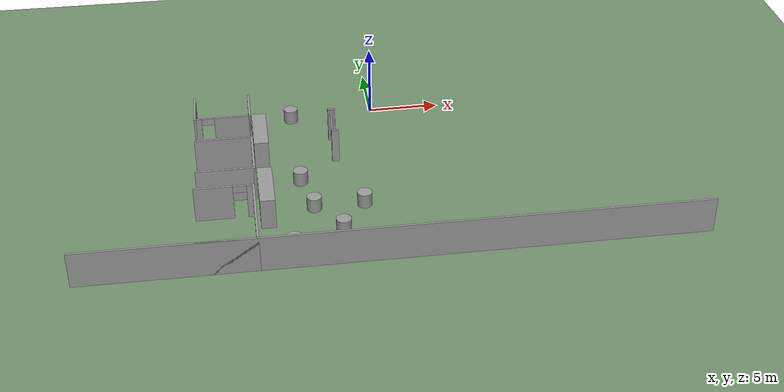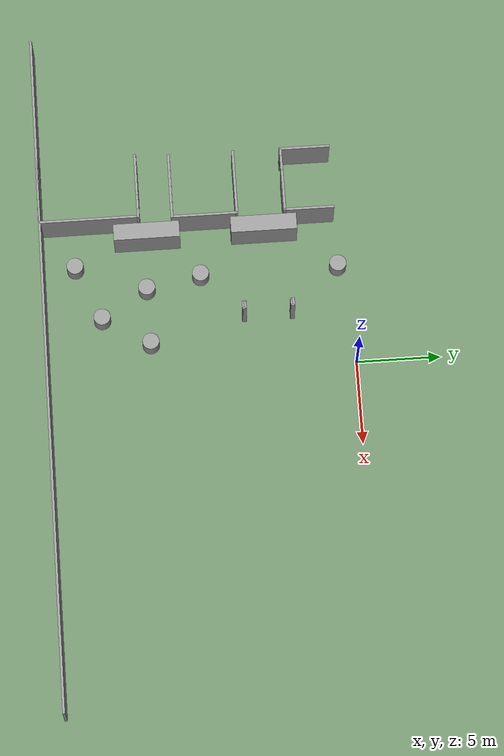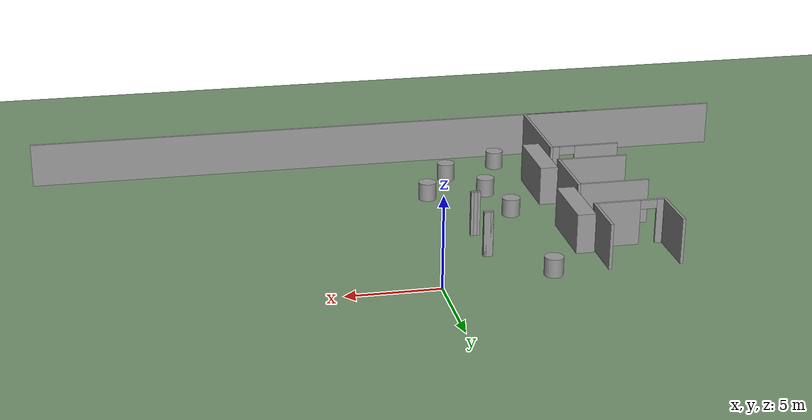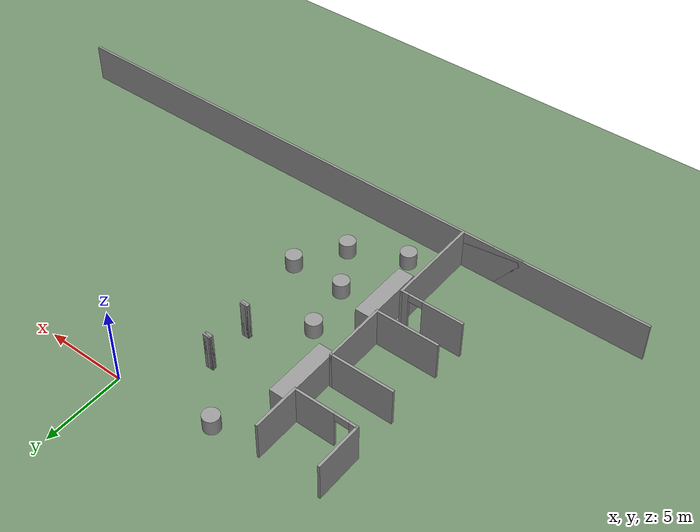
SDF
<sdf version="1.7">
 <world name="default">
  <model name="ground_plane">
   <static>1</static>
   <link name="link">
    <collision name="collision">
     <geometry><plane><normal>0 0 1</normal><size>600 600</size></plane></geometry>
     <surface>
      <contact><collide_bitmask>65535</collide_bitmask></contact>
      <friction><ode><mu>100</mu><mu2>50</mu2></ode></friction>
     </surface>
    </collision>
    <visual name="visual">
     <cast_shadows>0</cast_shadows>
     <geometry><plane><normal>0 0 1</normal><size>100 100</size></plane></geometry>
     <material><ambient>0.45 0.57 0.43 1</ambient><diffuse>0.45 0.57 0.43 1</diffuse></material>
    </visual>
   </link>
  </model>
  <model name="unit_box_clone_0">
   <pose>-8.33783 -11.9113 1.08892 0 -0.000118 -1.56902</pose>
   <link name="link">
    <inertial>
     <mass>1</mass>
     <inertia>
      <ixx>0.166667</ixx>
      <ixy>0</ixy>
      <ixz>0</ixz>
      <iyy>0.166667</iyy>
      <iyz>0</iyz>
      <izz>0.166667</izz>
     </inertia>
    </inertial>
    <collision name="collision"><geometry><box><size>3.92499 1 2.1783</size></box></geometry></collision>
    <visual name="visual">
     <geometry><box><size>3.92499 1 2.1783</size></box></geometry>
     <material>
      <script><name>Gazebo/Grey</name><uri>file://media/materials/scripts/gazebo.material</uri></script>
     </material>
    </visual>
   </link>
  </model>
  <model name="unit_box_clone_1">
   <pose>-8.36946 -4.94384 1.08892 0 0.000118 -1.57207</pose>
   <link name="link">
    <inertial>
     <mass>1</mass>
     <inertia>
      <ixx>0.166667</ixx>
      <ixy>0</ixy>
      <ixz>0</ixz>
      <iyy>0.166667</iyy>
      <iyz>0</iyz>
      <izz>0.166667</izz>
     </inertia>
    </inertial>
    <collision name="collision"><geometry><box><size>3.92499 1 2.1783</size></box></geometry></collision>
    <visual name="visual">
     <geometry><box><size>3.92499 1 2.1783</size></box></geometry>
     <material>
      <script><name>Gazebo/Grey</name><uri>file://media/materials/scripts/gazebo.material</uri></script>
     </material>
    </visual>
   </link>
  </model>
  <model name="unit_cylinder_4">
   <pose>-5.88047 -8.86762 0.499996 -3e-06 1e-06 0</pose>
   <link name="link">
    <inertial>
     <mass>1</mass>
     <inertia><ixx>0.145833</ixx><ixy>0</ixy><ixz>0</ixz><iyy>0.145833</iyy><iyz>0</iyz><izz>0.125</izz></inertia>
    </inertial>
    <collision name="collision">
     <geometry><cylinder><radius>0.5</radius><length>1</length></cylinder></geometry>
    </collision>
    <visual name="visual">
     <geometry><cylinder><radius>0.5</radius><length>1</length></cylinder></geometry>
     <material>
      <script><name>Gazebo/Grey</name><uri>file://media/materials/scripts/gazebo.material</uri></script>
     </material>
    </visual>
   </link>
  </model>
  <model name="unit_cylinder_5">
   <pose>-5.96407 -0.674477 0.499996 -3e-06 1e-06 0</pose>
   <link name="link">
    <inertial>
     <mass>1</mass>
     <inertia><ixx>0.145833</ixx><ixy>0</ixy><ixz>0</ixz><iyy>0.145833</iyy><iyz>0</iyz><izz>0.125</izz></inertia>
    </inertial>
    <collision name="collision">
     <geometry><cylinder><radius>0.5</radius><length>1</length></cylinder></geometry>
    </collision>
    <visual name="visual">
     <geometry><cylinder><radius>0.5</radius><length>1</length></cylinder></geometry>
     <material>
      <script><name>Gazebo/Grey</name><uri>file://media/materials/scripts/gazebo.material</uri></script>
     </material>
    </visual>
   </link>
  </model>
  <model name="unit_cylinder_6">
   <pose>-5.21652 -12.1055 0.499997 3e-06 -2e-06 0</pose>
   <link name="link">
    <inertial>
     <mass>1</mass>
     <inertia><ixx>0.145833</ixx><ixy>0</ixy><ixz>0</ixz><iyy>0.145833</iyy><iyz>0</iyz><izz>0.125</izz></inertia>
    </inertial>
    <collision name="collision">
     <geometry><cylinder><radius>0.5</radius><length>1</length></cylinder></geometry>
    </collision>
    <visual name="visual">
     <geometry><cylinder><radius>0.5</radius><length>1</length></cylinder></geometry>
     <material>
      <script><name>Gazebo/Grey</name><uri>file://media/materials/scripts/gazebo.material</uri></script>
     </material>
    </visual>
   </link>
  </model>
  <model name="unit_cylinder_7">
   <pose>-1.82971 -12.0558 0.499996 -3e-06 1e-06 0</pose>
   <link name="link">
    <inertial>
     <mass>1</mass>
     <inertia><ixx>0.145833</ixx><ixy>0</ixy><ixz>0</ixz><iyy>0.145833</iyy><iyz>0</iyz><izz>0.125</izz></inertia>
    </inertial>
    <collision name="collision">
     <geometry><cylinder><radius>0.5</radius><length>1</length></cylinder></geometry>
    </collision>
    <visual name="visual">
     <geometry><cylinder><radius>0.5</radius><length>1</length></cylinder></geometry>
     <material>
      <script><name>Gazebo/Grey</name><uri>file://media/materials/scripts/gazebo.material</uri></script>
     </material>
    </visual>
   </link>
  </model>
  <model name="unit_cylinder_8">
   <pose>-3.52298 -14.8483 0.499999 0 -0 0</pose>
   <link name="link">
    <inertial>
     <mass>1</mass>
     <inertia><ixx>0.145833</ixx><ixy>0</ixy><ixz>0</ixz><iyy>0.145833</iyy><iyz>0</iyz><izz>0.125</izz></inertia>
    </inertial>
    <collision name="collision">
     <geometry><cylinder><radius>0.5</radius><length>1</length></cylinder></geometry>
    </collision>
    <visual name="visual">
     <geometry><cylinder><radius>0.5</radius><length>1</length></cylinder></geometry>
     <material>
      <script><name>Gazebo/Grey</name><uri>file://media/materials/scripts/gazebo.material</uri></script>
     </material>
    </visual>
   </link>
  </model>
  <model name="unit_cylinder_10">
   <pose>-6.8017 -16.2883 0.499999 0 -0 0</pose>
   <link name="link">
    <inertial>
     <mass>1</mass>
     <inertia><ixx>0.145833</ixx><ixy>0</ixy><ixz>0</ixz><iyy>0.145833</iyy><iyz>0</iyz><izz>0.125</izz></inertia>
    </inertial>
    <collision name="collision">
     <geometry><cylinder><radius>0.5</radius><length>1</length></cylinder></geometry>
    </collision>
    <visual name="visual">
     <geometry><cylinder><radius>0.5</radius><length>1</length></cylinder></geometry>
     <material>
      <script><name>Gazebo/Grey</name><uri>file://media/materials/scripts/gazebo.material</uri></script>
     </material>
    </visual>
   </link>
  </model>
  <model name="myhal_V3_2">
   <link name="Wall_352">
    <pose>-0.05 -20.325 0 0 -0 0</pose>
    <visual name="Wall_352_Visual">
     <pose>0 0 1.25 0 -0 0</pose>
     <geometry><box><size>41 0.15 2.5</size></box></geometry>
     <material>
      <script><uri>file://media/materials/scripts/gazebo.material</uri><name>Gazebo/Grey</name></script>
      <ambient>1 1 1 1</ambient>
      <shader type="pixel"/>
     </material>
     <meta><layer>0</layer></meta>
    </visual>
    <collision name="Wall_352_Collision">
     <pose>0 0 1.25 0 -0 0</pose>
     <geometry><box><size>41 0.15 2.5</size></box></geometry>
     <surface>
      <friction>
       <ode><mu>1</mu><mu2>1</mu2><fdir1>0 0 0</fdir1><slip1>0</slip1><slip2>0</slip2></ode>
       <torsional>
        <coefficient>1</coefficient>
        <patch_radius>0</patch_radius>
        <surface_radius>0</surface_radius>
        <use_patch_radius>1</use_patch_radius>
        <ode><slip>0</slip></ode>
       </torsional>
      </friction>
      <bounce><restitution_coefficient>0</restitution_coefficient><threshold>1e+06</threshold></bounce>
      <contact>
       <collide_without_contact>0</collide_without_contact>
       <collide_without_contact_bitmask>1</collide_without_contact_bitmask>
       <collide_bitmask>1</collide_bitmask>
       <ode>
        <soft_cfm>0</soft_cfm>
        <soft_erp>0.2</soft_erp>
        <kp>1e+13</kp>
        <kd>1</kd>
        <max_vel>0.01</max_vel>
        <min_depth>0</min_depth>
       </ode>
       <bullet>
        <split_impulse>1</split_impulse>
        <split_impulse_penetration_threshold>-0.01</split_impulse_penetration_threshold>
        <soft_cfm>0</soft_cfm>
        <soft_erp>0.2</soft_erp>
        <kp>1e+13</kp>
        <kd>1</kd>
       </bullet>
      </contact>
     </surface>
    </collision>
   </link>
   <link name="Wall_428">
    <pose>-10.85 -20.325 0 0 -0 0</pose>
    <visual name="Wall_428_Visual">
     <pose>0 0 1.25 0 -0 0</pose>
     <geometry><box><size>4 0.15 2.5</size></box></geometry>
     <material>
      <script><uri>file://media/materials/scripts/gazebo.material</uri><name>Gazebo/Grey</name></script>
      <ambient>1 1 1 1</ambient>
      <shader type="pixel"/>
     </material>
     <meta><layer>0</layer></meta>
    </visual>
    <collision name="Wall_428_Collision">
     <pose>0 0 1.25 0 -0 0</pose>
     <geometry><box><size>4 0.15 2.5</size></box></geometry>
     <surface>
      <friction>
       <ode><mu>1</mu><mu2>1</mu2><fdir1>0 0 0</fdir1><slip1>0</slip1><slip2>0</slip2></ode>
       <torsional>
        <coefficient>1</coefficient>
        <patch_radius>0</patch_radius>
        <surface_radius>0</surface_radius>
        <use_patch_radius>1</use_patch_radius>
        <ode><slip>0</slip></ode>
       </torsional>
      </friction>
      <bounce><restitution_coefficient>0</restitution_coefficient><threshold>1e+06</threshold></bounce>
      <contact>
       <collide_without_contact>0</collide_without_contact>
       <collide_without_contact_bitmask>1</collide_without_contact_bitmask>
       <collide_bitmask>1</collide_bitmask>
       <ode>
        <soft_cfm>0</soft_cfm>
        <soft_erp>0.2</soft_erp>
        <kp>1e+13</kp>
        <kd>1</kd>
        <max_vel>0.01</max_vel>
        <min_depth>0</min_depth>
       </ode>
       <bullet>
        <split_impulse>1</split_impulse>
        <split_impulse_penetration_threshold>-0.01</split_impulse_penetration_threshold>
        <soft_cfm>0</soft_cfm>
        <soft_erp>0.2</soft_erp>
        <kp>1e+13</kp>
        <kd>1</kd>
       </bullet>
      </contact>
     </surface>
    </collision>
   </link>
   <link name="Wall_429">
    <pose>-8.925 -17.4 0 0 -0 1.5708</pose>
    <visual name="Wall_429_Visual">
     <pose>0 0 1.25 0 -0 0</pose>
     <geometry><box><size>6 0.15 2.5</size></box></geometry>
     <material>
      <script><uri>file://media/materials/scripts/gazebo.material</uri><name>Gazebo/Grey</name></script>
      <ambient>1 1 1 1</ambient>
      <shader type="pixel"/>
     </material>
     <meta><layer>0</layer></meta>
    </visual>
    <collision name="Wall_429_Collision">
     <pose>0 0 1.25 0 -0 0</pose>
     <geometry><box><size>6 0.15 2.5</size></box></geometry>
     <surface>
      <friction>
       <ode><mu>1</mu><mu2>1</mu2><fdir1>0 0 0</fdir1><slip1>0</slip1><slip2>0</slip2></ode>
       <torsional>
        <coefficient>1</coefficient>
        <patch_radius>0</patch_radius>
        <surface_radius>0</surface_radius>
        <use_patch_radius>1</use_patch_radius>
        <ode><slip>0</slip></ode>
       </torsional>
      </friction>
      <bounce><restitution_coefficient>0</restitution_coefficient><threshold>1e+06</threshold></bounce>
      <contact>
       <collide_without_contact>0</collide_without_contact>
       <collide_without_contact_bitmask>1</collide_without_contact_bitmask>
       <collide_bitmask>1</collide_bitmask>
       <ode>
        <soft_cfm>0</soft_cfm>
        <soft_erp>0.2</soft_erp>
        <kp>1e+13</kp>
        <kd>1</kd>
        <max_vel>0.01</max_vel>
        <min_depth>0</min_depth>
       </ode>
       <bullet>
        <split_impulse>1</split_impulse>
        <split_impulse_penetration_threshold>-0.01</split_impulse_penetration_threshold>
        <soft_cfm>0</soft_cfm>
        <soft_erp>0.2</soft_erp>
        <kp>1e+13</kp>
        <kd>1</kd>
       </bullet>
      </contact>
     </surface>
    </collision>
   </link>
   <link name="Wall_430">
    <pose>-10.85 -14.475 0 0 -0 3.14159</pose>
    <visual name="Wall_430_Visual_0">
     <pose>-1.73412 0 1.25 0 -0 0</pose>
     <geometry><box><size>0.531767 0.15 2.5</size></box></geometry>
     <material>
      <script><uri>file://media/materials/scripts/gazebo.material</uri><name>Gazebo/Grey</name></script>
      <ambient>1 1 1 1</ambient>
      <shader type="pixel"/>
     </material>
     <meta><layer>0</layer></meta>
    </visual>
    <visual name="Wall_430_Visual_1">
     <pose>0.715883 0 1.25 0 -0 0</pose>
     <geometry><box><size>2.56823 0.15 2.5</size></box></geometry>
     <material>
      <script><uri>file://media/materials/scripts/gazebo.material</uri><name>Gazebo/Grey</name></script>
      <ambient>1 1 1 1</ambient>
      <shader type="pixel"/>
     </material>
     <meta><layer>0</layer></meta>
    </visual>
    <visual name="Wall_430_Visual_2">
     <pose>-1.01823 0 2.25 0 -0 0</pose>
     <geometry><box><size>0.9 0.15 0.5</size></box></geometry>
     <material>
      <script><uri>file://media/materials/scripts/gazebo.material</uri><name>Gazebo/Grey</name></script>
      <ambient>1 1 1 1</ambient>
      <shader type="pixel"/>
     </material>
     <meta><layer>0</layer></meta>
    </visual>
    <collision name="Wall_430_Collision_2">
     <pose>-1.01823 0 2.25 0 -0 0</pose>
     <geometry><box><size>0.9 0.15 0.5</size></box></geometry>
     <surface>
      <friction>
       <ode><mu>1</mu><mu2>1</mu2><fdir1>0 0 0</fdir1><slip1>0</slip1><slip2>0</slip2></ode>
       <torsional>
        <coefficient>1</coefficient>
        <patch_radius>0</patch_radius>
        <surface_radius>0</surface_radius>
        <use_patch_radius>1</use_patch_radius>
        <ode><slip>0</slip></ode>
       </torsional>
      </friction>
      <bounce><restitution_coefficient>0</restitution_coefficient><threshold>1e+06</threshold></bounce>
      <contact>
       <collide_without_contact>0</collide_without_contact>
       <collide_without_contact_bitmask>1</collide_without_contact_bitmask>
       <collide_bitmask>1</collide_bitmask>
       <ode>
        <soft_cfm>0</soft_cfm>
        <soft_erp>0.2</soft_erp>
        <kp>1e+13</kp>
        <kd>1</kd>
        <max_vel>0.01</max_vel>
        <min_depth>0</min_depth>
       </ode>
       <bullet>
        <split_impulse>1</split_impulse>
        <split_impulse_penetration_threshold>-0.01</split_impulse_penetration_threshold>
        <soft_cfm>0</soft_cfm>
        <soft_erp>0.2</soft_erp>
        <kp>1e+13</kp>
        <kd>1</kd>
       </bullet>
      </contact>
     </surface>
    </collision>
    <collision name="Wall_430_Collision_1">
     <pose>0.715883 0 1.25 0 -0 0</pose>
     <geometry><box><size>2.56823 0.15 2.5</size></box></geometry>
     <surface>
      <friction>
       <ode><mu>1</mu><mu2>1</mu2><fdir1>0 0 0</fdir1><slip1>0</slip1><slip2>0</slip2></ode>
       <torsional>
        <coefficient>1</coefficient>
        <patch_radius>0</patch_radius>
        <surface_radius>0</surface_radius>
        <use_patch_radius>1</use_patch_radius>
        <ode><slip>0</slip></ode>
       </torsional>
      </friction>
      <bounce><restitution_coefficient>0</restitution_coefficient><threshold>1e+06</threshold></bounce>
      <contact>
       <collide_without_contact>0</collide_without_contact>
       <collide_without_contact_bitmask>1</collide_without_contact_bitmask>
       <collide_bitmask>1</collide_bitmask>
       <ode>
        <soft_cfm>0</soft_cfm>
        <soft_erp>0.2</soft_erp>
        <kp>1e+13</kp>
        <kd>1</kd>
        <max_vel>0.01</max_vel>
        <min_depth>0</min_depth>
       </ode>
       <bullet>
        <split_impulse>1</split_impulse>
        <split_impulse_penetration_threshold>-0.01</split_impulse_penetration_threshold>
        <soft_cfm>0</soft_cfm>
        <soft_erp>0.2</soft_erp>
        <kp>1e+13</kp>
        <kd>1</kd>
       </bullet>
      </contact>
     </surface>
    </collision>
    <collision name="Wall_430_Collision_0">
     <pose>-1.73412 0 1.25 0 -0 0</pose>
     <geometry><box><size>0.531767 0.15 2.5</size></box></geometry>
     <surface>
      <friction>
       <ode><mu>1</mu><mu2>1</mu2><fdir1>0 0 0</fdir1><slip1>0</slip1><slip2>0</slip2></ode>
       <torsional>
        <coefficient>1</coefficient>
        <patch_radius>0</patch_radius>
        <surface_radius>0</surface_radius>
        <use_patch_radius>1</use_patch_radius>
        <ode><slip>0</slip></ode>
       </torsional>
      </friction>
      <bounce><restitution_coefficient>0</restitution_coefficient><threshold>1e+06</threshold></bounce>
      <contact>
       <collide_without_contact>0</collide_without_contact>
       <collide_without_contact_bitmask>1</collide_without_contact_bitmask>
       <collide_bitmask>1</collide_bitmask>
       <ode>
        <soft_cfm>0</soft_cfm>
        <soft_erp>0.2</soft_erp>
        <kp>1e+13</kp>
        <kd>1</kd>
        <max_vel>0.01</max_vel>
        <min_depth>0</min_depth>
       </ode>
       <bullet>
        <split_impulse>1</split_impulse>
        <split_impulse_penetration_threshold>-0.01</split_impulse_penetration_threshold>
        <soft_cfm>0</soft_cfm>
        <soft_erp>0.2</soft_erp>
        <kp>1e+13</kp>
        <kd>1</kd>
       </bullet>
      </contact>
     </surface>
    </collision>
   </link>
   <link name="Wall_443">
    <pose>-12.625 -4.35 0 0 0 -1.5708</pose>
    <visual name="Wall_443_Visual">
     <pose>0 0 1.25 0 -0 0</pose>
     <geometry><box><size>3 0.15 2.5</size></box></geometry>
     <material>
      <script><uri>file://media/materials/scripts/gazebo.material</uri><name>Gazebo/Grey</name></script>
      <ambient>1 1 1 1</ambient>
      <shader type="pixel"/>
     </material>
     <meta><layer>0</layer></meta>
    </visual>
    <collision name="Wall_443_Collision">
     <pose>0 0 1.25 0 -0 0</pose>
     <geometry><box><size>3 0.15 2.5</size></box></geometry>
     <surface>
      <friction>
       <ode><mu>1</mu><mu2>1</mu2><fdir1>0 0 0</fdir1><slip1>0</slip1><slip2>0</slip2></ode>
       <torsional>
        <coefficient>1</coefficient>
        <patch_radius>0</patch_radius>
        <surface_radius>0</surface_radius>
        <use_patch_radius>1</use_patch_radius>
        <ode><slip>0</slip></ode>
       </torsional>
      </friction>
      <bounce><restitution_coefficient>0</restitution_coefficient><threshold>1e+06</threshold></bounce>
      <contact>
       <collide_without_contact>0</collide_without_contact>
       <collide_without_contact_bitmask>1</collide_without_contact_bitmask>
       <collide_bitmask>1</collide_bitmask>
       <ode>
        <soft_cfm>0</soft_cfm>
        <soft_erp>0.2</soft_erp>
        <kp>1e+13</kp>
        <kd>1</kd>
        <max_vel>0.01</max_vel>
        <min_depth>0</min_depth>
       </ode>
       <bullet>
        <split_impulse>1</split_impulse>
        <split_impulse_penetration_threshold>-0.01</split_impulse_penetration_threshold>
        <soft_cfm>0</soft_cfm>
        <soft_erp>0.2</soft_erp>
        <kp>1e+13</kp>
        <kd>1</kd>
       </bullet>
      </contact>
     </surface>
    </collision>
   </link>
   <link name="Wall_444">
    <pose>-10.7 -5.775 0 0 -0 0</pose>
    <visual name="Wall_444_Visual_0">
     <pose>-1.73399 0 1.25 0 -0 0</pose>
     <geometry><box><size>0.532014 0.15 2.5</size></box></geometry>
     <material>
      <script><uri>file://media/materials/scripts/gazebo.material</uri><name>Gazebo/Grey</name></script>
      <ambient>1 1 1 1</ambient>
      <shader type="pixel"/>
     </material>
     <meta><layer>0</layer></meta>
    </visual>
    <visual name="Wall_444_Visual_1">
     <pose>0.716007 0 1.25 0 -0 0</pose>
     <geometry><box><size>2.56799 0.15 2.5</size></box></geometry>
     <material>
      <script><uri>file://media/materials/scripts/gazebo.material</uri><name>Gazebo/Grey</name></script>
      <ambient>1 1 1 1</ambient>
      <shader type="pixel"/>
     </material>
     <meta><layer>0</layer></meta>
    </visual>
    <visual name="Wall_444_Visual_2">
     <pose>-1.01799 0 2.25 0 -0 0</pose>
     <geometry><box><size>0.9 0.15 0.5</size></box></geometry>
     <material>
      <script><uri>file://media/materials/scripts/gazebo.material</uri><name>Gazebo/Grey</name></script>
      <ambient>1 1 1 1</ambient>
      <shader type="pixel"/>
     </material>
     <meta><layer>0</layer></meta>
    </visual>
    <collision name="Wall_444_Collision_0">
     <pose>-1.73399 0 1.25 0 -0 0</pose>
     <geometry><box><size>0.532014 0.15 2.5</size></box></geometry>
     <surface>
      <friction>
       <ode><mu>1</mu><mu2>1</mu2><fdir1>0 0 0</fdir1><slip1>0</slip1><slip2>0</slip2></ode>
       <torsional>
        <coefficient>1</coefficient>
        <patch_radius>0</patch_radius>
        <surface_radius>0</surface_radius>
        <use_patch_radius>1</use_patch_radius>
        <ode><slip>0</slip></ode>
       </torsional>
      </friction>
      <bounce><restitution_coefficient>0</restitution_coefficient><threshold>1e+06</threshold></bounce>
      <contact>
       <collide_without_contact>0</collide_without_contact>
       <collide_without_contact_bitmask>1</collide_without_contact_bitmask>
       <collide_bitmask>1</collide_bitmask>
       <ode>
        <soft_cfm>0</soft_cfm>
        <soft_erp>0.2</soft_erp>
        <kp>1e+13</kp>
        <kd>1</kd>
        <max_vel>0.01</max_vel>
        <min_depth>0</min_depth>
       </ode>
       <bullet>
        <split_impulse>1</split_impulse>
        <split_impulse_penetration_threshold>-0.01</split_impulse_penetration_threshold>
        <soft_cfm>0</soft_cfm>
        <soft_erp>0.2</soft_erp>
        <kp>1e+13</kp>
        <kd>1</kd>
       </bullet>
      </contact>
     </surface>
    </collision>
    <collision name="Wall_444_Collision_1">
     <pose>0.716007 0 1.25 0 -0 0</pose>
     <geometry><box><size>2.56799 0.15 2.5</size></box></geometry>
     <surface>
      <friction>
       <ode><mu>1</mu><mu2>1</mu2><fdir1>0 0 0</fdir1><slip1>0</slip1><slip2>0</slip2></ode>
       <torsional>
        <coefficient>1</coefficient>
        <patch_radius>0</patch_radius>
        <surface_radius>0</surface_radius>
        <use_patch_radius>1</use_patch_radius>
        <ode><slip>0</slip></ode>
       </torsional>
      </friction>
      <bounce><restitution_coefficient>0</restitution_coefficient><threshold>1e+06</threshold></bounce>
      <contact>
       <collide_without_contact>0</collide_without_contact>
       <collide_without_contact_bitmask>1</collide_without_contact_bitmask>
       <collide_bitmask>1</collide_bitmask>
       <ode>
        <soft_cfm>0</soft_cfm>
        <soft_erp>0.2</soft_erp>
        <kp>1e+13</kp>
        <kd>1</kd>
        <max_vel>0.01</max_vel>
        <min_depth>0</min_depth>
       </ode>
       <bullet>
        <split_impulse>1</split_impulse>
        <split_impulse_penetration_threshold>-0.01</split_impulse_penetration_threshold>
        <soft_cfm>0</soft_cfm>
        <soft_erp>0.2</soft_erp>
        <kp>1e+13</kp>
        <kd>1</kd>
       </bullet>
      </contact>
     </surface>
    </collision>
    <collision name="Wall_444_Collision_2">
     <pose>-1.01799 0 2.25 0 -0 0</pose>
     <geometry><box><size>0.9 0.15 0.5</size></box></geometry>
     <surface>
      <friction>
       <ode><mu>1</mu><mu2>1</mu2><fdir1>0 0 0</fdir1><slip1>0</slip1><slip2>0</slip2></ode>
       <torsional>
        <coefficient>1</coefficient>
        <patch_radius>0</patch_radius>
        <surface_radius>0</surface_radius>
        <use_patch_radius>1</use_patch_radius>
        <ode><slip>0</slip></ode>
       </torsional>
      </friction>
      <bounce><restitution_coefficient>0</restitution_coefficient><threshold>1e+06</threshold></bounce>
      <contact>
       <collide_without_contact>0</collide_without_contact>
       <collide_without_contact_bitmask>1</collide_without_contact_bitmask>
       <collide_bitmask>1</collide_bitmask>
       <ode>
        <soft_cfm>0</soft_cfm>
        <soft_erp>0.2</soft_erp>
        <kp>1e+13</kp>
        <kd>1</kd>
        <max_vel>0.01</max_vel>
        <min_depth>0</min_depth>
       </ode>
       <bullet>
        <split_impulse>1</split_impulse>
        <split_impulse_penetration_threshold>-0.01</split_impulse_penetration_threshold>
        <soft_cfm>0</soft_cfm>
        <soft_erp>0.2</soft_erp>
        <kp>1e+13</kp>
        <kd>1</kd>
       </bullet>
      </contact>
     </surface>
    </collision>
   </link>
   <link name="Wall_449">
    <pose>-8.775 -4.35 0 0 0 -1.5708</pose>
    <visual name="Wall_449_Visual">
     <pose>0 0 1.25 0 -0 0</pose>
     <geometry><box><size>3 0.15 2.5</size></box></geometry>
     <material>
      <script><uri>file://media/materials/scripts/gazebo.material</uri><name>Gazebo/Grey</name></script>
      <ambient>1 1 1 1</ambient>
      <shader type="pixel"/>
     </material>
     <meta><layer>0</layer></meta>
    </visual>
    <collision name="Wall_449_Collision">
     <pose>0 0 1.25 0 -0 0</pose>
     <geometry><box><size>3 0.15 2.5</size></box></geometry>
     <surface>
      <friction>
       <ode><mu>1</mu><mu2>1</mu2><fdir1>0 0 0</fdir1><slip1>0</slip1><slip2>0</slip2></ode>
       <torsional>
        <coefficient>1</coefficient>
        <patch_radius>0</patch_radius>
        <surface_radius>0</surface_radius>
        <use_patch_radius>1</use_patch_radius>
        <ode><slip>0</slip></ode>
       </torsional>
      </friction>
      <bounce><restitution_coefficient>0</restitution_coefficient><threshold>1e+06</threshold></bounce>
      <contact>
       <collide_without_contact>0</collide_without_contact>
       <collide_without_contact_bitmask>1</collide_without_contact_bitmask>
       <collide_bitmask>1</collide_bitmask>
       <ode>
        <soft_cfm>0</soft_cfm>
        <soft_erp>0.2</soft_erp>
        <kp>1e+13</kp>
        <kd>1</kd>
        <max_vel>0.01</max_vel>
        <min_depth>0</min_depth>
       </ode>
       <bullet>
        <split_impulse>1</split_impulse>
        <split_impulse_penetration_threshold>-0.01</split_impulse_penetration_threshold>
        <soft_cfm>0</soft_cfm>
        <soft_erp>0.2</soft_erp>
        <kp>1e+13</kp>
        <kd>1</kd>
       </bullet>
      </contact>
     </surface>
    </collision>
   </link>
   <link name="Wall_458">
    <pose>-10.7 -8.625 0 0 -0 0</pose>
    <visual name="Wall_458_Visual">
     <pose>0 0 1.25 0 -0 0</pose>
     <geometry><box><size>4 0.15 2.5</size></box></geometry>
     <material>
      <script><uri>file://media/materials/scripts/gazebo.material</uri><name>Gazebo/Grey</name></script>
      <ambient>1 1 1 1</ambient>
      <shader type="pixel"/>
     </material>
     <meta><layer>0</layer></meta>
    </visual>
    <collision name="Wall_458_Collision">
     <pose>0 0 1.25 0 -0 0</pose>
     <geometry><box><size>4 0.15 2.5</size></box></geometry>
     <surface>
      <friction>
       <ode><mu>1</mu><mu2>1</mu2><fdir1>0 0 0</fdir1><slip1>0</slip1><slip2>0</slip2></ode>
       <torsional>
        <coefficient>1</coefficient>
        <patch_radius>0</patch_radius>
        <surface_radius>0</surface_radius>
        <use_patch_radius>1</use_patch_radius>
        <ode><slip>0</slip></ode>
       </torsional>
      </friction>
      <bounce><restitution_coefficient>0</restitution_coefficient><threshold>1e+06</threshold></bounce>
      <contact>
       <collide_without_contact>0</collide_without_contact>
       <collide_without_contact_bitmask>1</collide_without_contact_bitmask>
       <collide_bitmask>1</collide_bitmask>
       <ode>
        <soft_cfm>0</soft_cfm>
        <soft_erp>0.2</soft_erp>
        <kp>1e+13</kp>
        <kd>1</kd>
        <max_vel>0.01</max_vel>
        <min_depth>0</min_depth>
       </ode>
       <bullet>
        <split_impulse>1</split_impulse>
        <split_impulse_penetration_threshold>-0.01</split_impulse_penetration_threshold>
        <soft_cfm>0</soft_cfm>
        <soft_erp>0.2</soft_erp>
        <kp>1e+13</kp>
        <kd>1</kd>
       </bullet>
      </contact>
     </surface>
    </collision>
   </link>
   <link name="Wall_461">
    <pose>-10.7 -12.475 0 0 -0 0</pose>
    <visual name="Wall_461_Visual">
     <pose>0 0 1.25 0 -0 0</pose>
     <geometry><box><size>4 0.15 2.5</size></box></geometry>
     <material>
      <script><uri>file://media/materials/scripts/gazebo.material</uri><name>Gazebo/Grey</name></script>
      <ambient>1 1 1 1</ambient>
      <shader type="pixel"/>
     </material>
     <meta><layer>0</layer></meta>
    </visual>
    <collision name="Wall_461_Collision">
     <pose>0 0 1.25 0 -0 0</pose>
     <geometry><box><size>4 0.15 2.5</size></box></geometry>
     <surface>
      <friction>
       <ode><mu>1</mu><mu2>1</mu2><fdir1>0 0 0</fdir1><slip1>0</slip1><slip2>0</slip2></ode>
       <torsional>
        <coefficient>1</coefficient>
        <patch_radius>0</patch_radius>
        <surface_radius>0</surface_radius>
        <use_patch_radius>1</use_patch_radius>
        <ode><slip>0</slip></ode>
       </torsional>
      </friction>
      <bounce><restitution_coefficient>0</restitution_coefficient><threshold>1e+06</threshold></bounce>
      <contact>
       <collide_without_contact>0</collide_without_contact>
       <collide_without_contact_bitmask>1</collide_without_contact_bitmask>
       <collide_bitmask>1</collide_bitmask>
       <ode>
        <soft_cfm>0</soft_cfm>
        <soft_erp>0.2</soft_erp>
        <kp>1e+13</kp>
        <kd>1</kd>
        <max_vel>0.01</max_vel>
        <min_depth>0</min_depth>
       </ode>
       <bullet>
        <split_impulse>1</split_impulse>
        <split_impulse_penetration_threshold>-0.01</split_impulse_penetration_threshold>
        <soft_cfm>0</soft_cfm>
        <soft_erp>0.2</soft_erp>
        <kp>1e+13</kp>
        <kd>1</kd>
       </bullet>
      </contact>
     </surface>
    </collision>
   </link>
   <link name="Wall_462">
    <pose>-8.775 -10.55 0 0 -0 1.5708</pose>
    <visual name="Wall_462_Visual">
     <pose>0 0 1.25 0 -0 0</pose>
     <geometry><box><size>4 0.15 2.5</size></box></geometry>
     <material>
      <script><uri>file://media/materials/scripts/gazebo.material</uri><name>Gazebo/Grey</name></script>
      <ambient>1 1 1 1</ambient>
      <shader type="pixel"/>
     </material>
     <meta><layer>0</layer></meta>
    </visual>
    <collision name="Wall_462_Collision">
     <pose>0 0 1.25 0 -0 0</pose>
     <geometry><box><size>4 0.15 2.5</size></box></geometry>
     <surface>
      <friction>
       <ode><mu>1</mu><mu2>1</mu2><fdir1>0 0 0</fdir1><slip1>0</slip1><slip2>0</slip2></ode>
       <torsional>
        <coefficient>1</coefficient>
        <patch_radius>0</patch_radius>
        <surface_radius>0</surface_radius>
        <use_patch_radius>1</use_patch_radius>
        <ode><slip>0</slip></ode>
       </torsional>
      </friction>
      <bounce><restitution_coefficient>0</restitution_coefficient><threshold>1e+06</threshold></bounce>
      <contact>
       <collide_without_contact>0</collide_without_contact>
       <collide_without_contact_bitmask>1</collide_without_contact_bitmask>
       <collide_bitmask>1</collide_bitmask>
       <ode>
        <soft_cfm>0</soft_cfm>
        <soft_erp>0.2</soft_erp>
        <kp>1e+13</kp>
        <kd>1</kd>
        <max_vel>0.01</max_vel>
        <min_depth>0</min_depth>
       </ode>
       <bullet>
        <split_impulse>1</split_impulse>
        <split_impulse_penetration_threshold>-0.01</split_impulse_penetration_threshold>
        <soft_cfm>0</soft_cfm>
        <soft_erp>0.2</soft_erp>
        <kp>1e+13</kp>
        <kd>1</kd>
       </bullet>
      </contact>
     </surface>
    </collision>
   </link>
   <link name="Wall_540">
    <pose>-3 -8.625 0 0 -0 0</pose>
    <visual name="Wall_540_Visual">
     <pose>0 0 1.25 0 -0 0</pose>
     <geometry><box><size>0.5 0.15 2.5</size></box></geometry>
     <material>
      <script><uri>file://media/materials/scripts/gazebo.material</uri><name>Gazebo/Grey</name></script>
      <ambient>1 1 1 1</ambient>
      <shader type="pixel"/>
     </material>
     <meta><layer>0</layer></meta>
    </visual>
    <collision name="Wall_540_Collision">
     <pose>0 0 1.25 0 -0 0</pose>
     <geometry><box><size>0.5 0.15 2.5</size></box></geometry>
     <surface>
      <friction>
       <ode><mu>1</mu><mu2>1</mu2><fdir1>0 0 0</fdir1><slip1>0</slip1><slip2>0</slip2></ode>
       <torsional>
        <coefficient>1</coefficient>
        <patch_radius>0</patch_radius>
        <surface_radius>0</surface_radius>
        <use_patch_radius>1</use_patch_radius>
        <ode><slip>0</slip></ode>
       </torsional>
      </friction>
      <bounce><restitution_coefficient>0</restitution_coefficient><threshold>1e+06</threshold></bounce>
      <contact>
       <collide_without_contact>0</collide_without_contact>
       <collide_without_contact_bitmask>1</collide_without_contact_bitmask>
       <collide_bitmask>1</collide_bitmask>
       <ode>
        <soft_cfm>0</soft_cfm>
        <soft_erp>0.2</soft_erp>
        <kp>1e+13</kp>
        <kd>1</kd>
        <max_vel>0.01</max_vel>
        <min_depth>0</min_depth>
       </ode>
       <bullet>
        <split_impulse>1</split_impulse>
        <split_impulse_penetration_threshold>-0.01</split_impulse_penetration_threshold>
        <soft_cfm>0</soft_cfm>
        <soft_erp>0.2</soft_erp>
        <kp>1e+13</kp>
        <kd>1</kd>
       </bullet>
      </contact>
     </surface>
    </collision>
   </link>
   <link name="Wall_542">
    <pose>-3.175 -8.575 0 0 -0 1.5708</pose>
    <visual name="Wall_542_Visual">
     <pose>0 0 1.25 0 -0 0</pose>
     <geometry><box><size>0.25 0.15 2.5</size></box></geometry>
     <material>
      <script><uri>file://media/materials/scripts/gazebo.material</uri><name>Gazebo/Grey</name></script>
      <ambient>1 1 1 1</ambient>
      <shader type="pixel"/>
     </material>
     <meta><layer>0</layer></meta>
    </visual>
    <collision name="Wall_542_Collision">
     <pose>0 0 1.25 0 -0 0</pose>
     <geometry><box><size>0.25 0.15 2.5</size></box></geometry>
     <surface>
      <friction>
       <ode><mu>1</mu><mu2>1</mu2><fdir1>0 0 0</fdir1><slip1>0</slip1><slip2>0</slip2></ode>
       <torsional>
        <coefficient>1</coefficient>
        <patch_radius>0</patch_radius>
        <surface_radius>0</surface_radius>
        <use_patch_radius>1</use_patch_radius>
        <ode><slip>0</slip></ode>
       </torsional>
      </friction>
      <bounce><restitution_coefficient>0</restitution_coefficient><threshold>1e+06</threshold></bounce>
      <contact>
       <collide_without_contact>0</collide_without_contact>
       <collide_without_contact_bitmask>1</collide_without_contact_bitmask>
       <collide_bitmask>1</collide_bitmask>
       <ode>
        <soft_cfm>0</soft_cfm>
        <soft_erp>0.2</soft_erp>
        <kp>1e+13</kp>
        <kd>1</kd>
        <max_vel>0.01</max_vel>
        <min_depth>0</min_depth>
       </ode>
       <bullet>
        <split_impulse>1</split_impulse>
        <split_impulse_penetration_threshold>-0.01</split_impulse_penetration_threshold>
        <soft_cfm>0</soft_cfm>
        <soft_erp>0.2</soft_erp>
        <kp>1e+13</kp>
        <kd>1</kd>
       </bullet>
      </contact>
     </surface>
    </collision>
   </link>
   <link name="Wall_543">
    <pose>-3 -8.525 0 0 -0 0</pose>
    <visual name="Wall_543_Visual">
     <pose>0 0 1.25 0 -0 0</pose>
     <geometry><box><size>0.5 0.15 2.5</size></box></geometry>
     <material>
      <script><uri>file://media/materials/scripts/gazebo.material</uri><name>Gazebo/Grey</name></script>
      <ambient>1 1 1 1</ambient>
      <shader type="pixel"/>
     </material>
     <meta><layer>0</layer></meta>
    </visual>
    <collision name="Wall_543_Collision">
     <pose>0 0 1.25 0 -0 0</pose>
     <geometry><box><size>0.5 0.15 2.5</size></box></geometry>
     <surface>
      <friction>
       <ode><mu>1</mu><mu2>1</mu2><fdir1>0 0 0</fdir1><slip1>0</slip1><slip2>0</slip2></ode>
       <torsional>
        <coefficient>1</coefficient>
        <patch_radius>0</patch_radius>
        <surface_radius>0</surface_radius>
        <use_patch_radius>1</use_patch_radius>
        <ode><slip>0</slip></ode>
       </torsional>
      </friction>
      <bounce><restitution_coefficient>0</restitution_coefficient><threshold>1e+06</threshold></bounce>
      <contact>
       <collide_without_contact>0</collide_without_contact>
       <collide_without_contact_bitmask>1</collide_without_contact_bitmask>
       <collide_bitmask>1</collide_bitmask>
       <ode>
        <soft_cfm>0</soft_cfm>
        <soft_erp>0.2</soft_erp>
        <kp>1e+13</kp>
        <kd>1</kd>
        <max_vel>0.01</max_vel>
        <min_depth>0</min_depth>
       </ode>
       <bullet>
        <split_impulse>1</split_impulse>
        <split_impulse_penetration_threshold>-0.01</split_impulse_penetration_threshold>
        <soft_cfm>0</soft_cfm>
        <soft_erp>0.2</soft_erp>
        <kp>1e+13</kp>
        <kd>1</kd>
       </bullet>
      </contact>
     </surface>
    </collision>
   </link>
   <link name="Wall_545">
    <pose>-2.825 -8.575 0 0 0 -1.5708</pose>
    <visual name="Wall_545_Visual">
     <pose>0 0 1.25 0 -0 0</pose>
     <geometry><box><size>0.25 0.15 2.5</size></box></geometry>
     <material>
      <script><uri>file://media/materials/scripts/gazebo.material</uri><name>Gazebo/Grey</name></script>
      <ambient>1 1 1 1</ambient>
      <shader type="pixel"/>
     </material>
     <meta><layer>0</layer></meta>
    </visual>
    <collision name="Wall_545_Collision">
     <pose>0 0 1.25 0 -0 0</pose>
     <geometry><box><size>0.25 0.15 2.5</size></box></geometry>
     <surface>
      <friction>
       <ode><mu>1</mu><mu2>1</mu2><fdir1>0 0 0</fdir1><slip1>0</slip1><slip2>0</slip2></ode>
       <torsional>
        <coefficient>1</coefficient>
        <patch_radius>0</patch_radius>
        <surface_radius>0</surface_radius>
        <use_patch_radius>1</use_patch_radius>
        <ode><slip>0</slip></ode>
       </torsional>
      </friction>
      <bounce><restitution_coefficient>0</restitution_coefficient><threshold>1e+06</threshold></bounce>
      <contact>
       <collide_without_contact>0</collide_without_contact>
       <collide_without_contact_bitmask>1</collide_without_contact_bitmask>
       <collide_bitmask>1</collide_bitmask>
       <ode>
        <soft_cfm>0</soft_cfm>
        <soft_erp>0.2</soft_erp>
        <kp>1e+13</kp>
        <kd>1</kd>
        <max_vel>0.01</max_vel>
        <min_depth>0</min_depth>
       </ode>
       <bullet>
        <split_impulse>1</split_impulse>
        <split_impulse_penetration_threshold>-0.01</split_impulse_penetration_threshold>
        <soft_cfm>0</soft_cfm>
        <soft_erp>0.2</soft_erp>
        <kp>1e+13</kp>
        <kd>1</kd>
       </bullet>
      </contact>
     </surface>
    </collision>
   </link>
   <link name="Wall_548">
    <pose>-3 -5.775 0 0 -0 0</pose>
    <visual name="Wall_548_Visual">
     <pose>0 0 1.25 0 -0 0</pose>
     <geometry><box><size>0.5 0.15 2.5</size></box></geometry>
     <material>
      <script><uri>file://media/materials/scripts/gazebo.material</uri><name>Gazebo/Grey</name></script>
      <ambient>1 1 1 1</ambient>
      <shader type="pixel"/>
     </material>
     <meta><layer>0</layer></meta>
    </visual>
    <collision name="Wall_548_Collision">
     <pose>0 0 1.25 0 -0 0</pose>
     <geometry><box><size>0.5 0.15 2.5</size></box></geometry>
     <surface>
      <friction>
       <ode><mu>1</mu><mu2>1</mu2><fdir1>0 0 0</fdir1><slip1>0</slip1><slip2>0</slip2></ode>
       <torsional>
        <coefficient>1</coefficient>
        <patch_radius>0</patch_radius>
        <surface_radius>0</surface_radius>
        <use_patch_radius>1</use_patch_radius>
        <ode><slip>0</slip></ode>
       </torsional>
      </friction>
      <bounce><restitution_coefficient>0</restitution_coefficient><threshold>1e+06</threshold></bounce>
      <contact>
       <collide_without_contact>0</collide_without_contact>
       <collide_without_contact_bitmask>1</collide_without_contact_bitmask>
       <collide_bitmask>1</collide_bitmask>
       <ode>
        <soft_cfm>0</soft_cfm>
        <soft_erp>0.2</soft_erp>
        <kp>1e+13</kp>
        <kd>1</kd>
        <max_vel>0.01</max_vel>
        <min_depth>0</min_depth>
       </ode>
       <bullet>
        <split_impulse>1</split_impulse>
        <split_impulse_penetration_threshold>-0.01</split_impulse_penetration_threshold>
        <soft_cfm>0</soft_cfm>
        <soft_erp>0.2</soft_erp>
        <kp>1e+13</kp>
        <kd>1</kd>
       </bullet>
      </contact>
     </surface>
    </collision>
   </link>
   <link name="Wall_550">
    <pose>-3.175 -5.725 0 0 -0 1.5708</pose>
    <visual name="Wall_550_Visual">
     <pose>0 0 1.25 0 -0 0</pose>
     <geometry><box><size>0.25 0.15 2.5</size></box></geometry>
     <material>
      <script><uri>file://media/materials/scripts/gazebo.material</uri><name>Gazebo/Grey</name></script>
      <ambient>1 1 1 1</ambient>
      <shader type="pixel"/>
     </material>
     <meta><layer>0</layer></meta>
    </visual>
    <collision name="Wall_550_Collision">
     <pose>0 0 1.25 0 -0 0</pose>
     <geometry><box><size>0.25 0.15 2.5</size></box></geometry>
     <surface>
      <friction>
       <ode><mu>1</mu><mu2>1</mu2><fdir1>0 0 0</fdir1><slip1>0</slip1><slip2>0</slip2></ode>
       <torsional>
        <coefficient>1</coefficient>
        <patch_radius>0</patch_radius>
        <surface_radius>0</surface_radius>
        <use_patch_radius>1</use_patch_radius>
        <ode><slip>0</slip></ode>
       </torsional>
      </friction>
      <bounce><restitution_coefficient>0</restitution_coefficient><threshold>1e+06</threshold></bounce>
      <contact>
       <collide_without_contact>0</collide_without_contact>
       <collide_without_contact_bitmask>1</collide_without_contact_bitmask>
       <collide_bitmask>1</collide_bitmask>
       <ode>
        <soft_cfm>0</soft_cfm>
        <soft_erp>0.2</soft_erp>
        <kp>1e+13</kp>
        <kd>1</kd>
        <max_vel>0.01</max_vel>
        <min_depth>0</min_depth>
       </ode>
       <bullet>
        <split_impulse>1</split_impulse>
        <split_impulse_penetration_threshold>-0.01</split_impulse_penetration_threshold>
        <soft_cfm>0</soft_cfm>
        <soft_erp>0.2</soft_erp>
        <kp>1e+13</kp>
        <kd>1</kd>
       </bullet>
      </contact>
     </surface>
    </collision>
   </link>
   <link name="Wall_551">
    <pose>-3 -5.675 0 0 -0 0</pose>
    <visual name="Wall_551_Visual">
     <pose>0 0 1.25 0 -0 0</pose>
     <geometry><box><size>0.5 0.15 2.5</size></box></geometry>
     <material>
      <script><uri>file://media/materials/scripts/gazebo.material</uri><name>Gazebo/Grey</name></script>
      <ambient>1 1 1 1</ambient>
      <shader type="pixel"/>
     </material>
     <meta><layer>0</layer></meta>
    </visual>
    <collision name="Wall_551_Collision">
     <pose>0 0 1.25 0 -0 0</pose>
     <geometry><box><size>0.5 0.15 2.5</size></box></geometry>
     <surface>
      <friction>
       <ode><mu>1</mu><mu2>1</mu2><fdir1>0 0 0</fdir1><slip1>0</slip1><slip2>0</slip2></ode>
       <torsional>
        <coefficient>1</coefficient>
        <patch_radius>0</patch_radius>
        <surface_radius>0</surface_radius>
        <use_patch_radius>1</use_patch_radius>
        <ode><slip>0</slip></ode>
       </torsional>
      </friction>
      <bounce><restitution_coefficient>0</restitution_coefficient><threshold>1e+06</threshold></bounce>
      <contact>
       <collide_without_contact>0</collide_without_contact>
       <collide_without_contact_bitmask>1</collide_without_contact_bitmask>
       <collide_bitmask>1</collide_bitmask>
       <ode>
        <soft_cfm>0</soft_cfm>
        <soft_erp>0.2</soft_erp>
        <kp>1e+13</kp>
        <kd>1</kd>
        <max_vel>0.01</max_vel>
        <min_depth>0</min_depth>
       </ode>
       <bullet>
        <split_impulse>1</split_impulse>
        <split_impulse_penetration_threshold>-0.01</split_impulse_penetration_threshold>
        <soft_cfm>0</soft_cfm>
        <soft_erp>0.2</soft_erp>
        <kp>1e+13</kp>
        <kd>1</kd>
       </bullet>
      </contact>
     </surface>
    </collision>
   </link>
   <link name="Wall_553">
    <pose>-2.825 -5.725 0 0 0 -1.5708</pose>
    <visual name="Wall_553_Visual">
     <pose>0 0 1.25 0 -0 0</pose>
     <geometry><box><size>0.25 0.15 2.5</size></box></geometry>
     <material>
      <script><uri>file://media/materials/scripts/gazebo.material</uri><name>Gazebo/Grey</name></script>
      <ambient>1 1 1 1</ambient>
      <shader type="pixel"/>
     </material>
     <meta><layer>0</layer></meta>
    </visual>
    <collision name="Wall_553_Collision">
     <pose>0 0 1.25 0 -0 0</pose>
     <geometry><box><size>0.25 0.15 2.5</size></box></geometry>
     <surface>
      <friction>
       <ode><mu>1</mu><mu2>1</mu2><fdir1>0 0 0</fdir1><slip1>0</slip1><slip2>0</slip2></ode>
       <torsional>
        <coefficient>1</coefficient>
        <patch_radius>0</patch_radius>
        <surface_radius>0</surface_radius>
        <use_patch_radius>1</use_patch_radius>
        <ode><slip>0</slip></ode>
       </torsional>
      </friction>
      <bounce><restitution_coefficient>0</restitution_coefficient><threshold>1e+06</threshold></bounce>
      <contact>
       <collide_without_contact>0</collide_without_contact>
       <collide_without_contact_bitmask>1</collide_without_contact_bitmask>
       <collide_bitmask>1</collide_bitmask>
       <ode>
        <soft_cfm>0</soft_cfm>
        <soft_erp>0.2</soft_erp>
        <kp>1e+13</kp>
        <kd>1</kd>
        <max_vel>0.01</max_vel>
        <min_depth>0</min_depth>
       </ode>
       <bullet>
        <split_impulse>1</split_impulse>
        <split_impulse_penetration_threshold>-0.01</split_impulse_penetration_threshold>
        <soft_cfm>0</soft_cfm>
        <soft_erp>0.2</soft_erp>
        <kp>1e+13</kp>
        <kd>1</kd>
       </bullet>
      </contact>
     </surface>
    </collision>
   </link>
   <static>1</static>
   <pose>-0.2201 2.1339 0 0 -0 0</pose>
  </model>
 </world>
</sdf>
